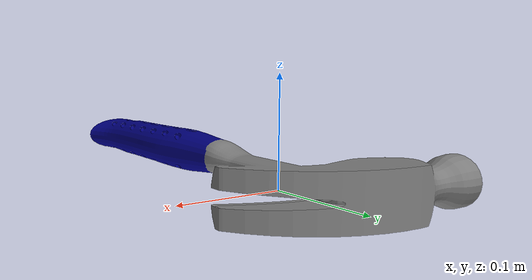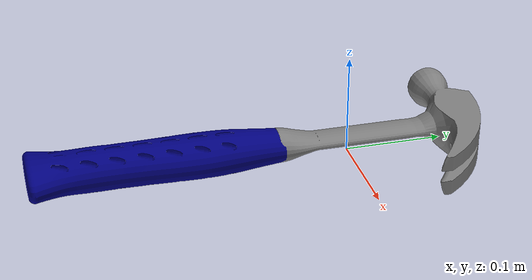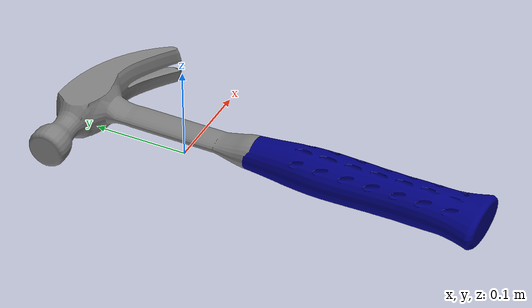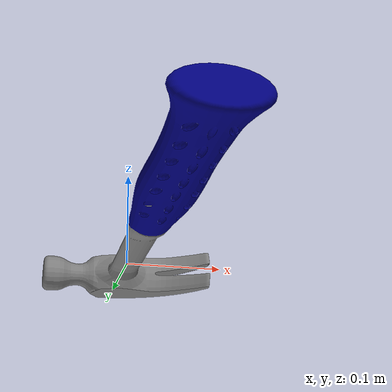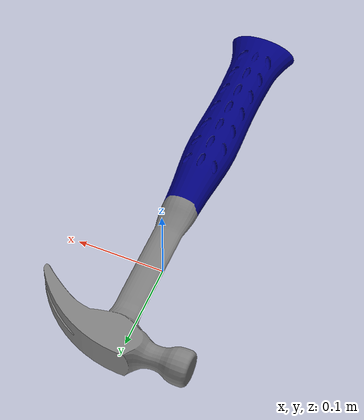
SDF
<?xml version='1.0'?>
<sdf version='1.6'>
  <model name='hammer1'>
    <link name='link'>
      <pose frame=''>-0 0 0.005 0 -0 0</pose>
      <inertial>
        <mass>0.00125</mass>
        <inertia>
          <ixx>7.6e-08</ixx>
          <ixy>0</ixy>
          <ixz>0</ixz>
          <iyy>1.052e-06</iyy>
          <iyz>0</iyz>
          <izz>1.107e-06</izz>
        </inertia>
        <pose frame=''>0 0 0 0 -0 0</pose>
      </inertial>
      <self_collide>0</self_collide>
      <kinematic>0</kinematic>
      <gravity>1</gravity>
      <visual name='visual'>
        <geometry>
          <mesh>
            <uri>/home/zisu/simulator/siemens_challenge/sim_world/toolbox/hammer1.dae</uri>
            <scale>0.0015 0.0015 0.0015</scale>
          </mesh>
        </geometry>
        <pose frame=''>0 0 0 0 -0 0</pose>
        <transparency>0</transparency>
        <cast_shadows>0</cast_shadows>
      </visual>
      <collision name='collision'>
        <laser_retro>0</laser_retro>
        <max_contacts>10</max_contacts>
        <pose frame=''>0.01311555 -0.0929307 0.0151917 0 -0 0</pose>
        <geometry>
          <box>
            <size>0.18886065 0.4579089 0.041499</size>
          </box>
        </geometry>
        <surface>
          <friction>
            <ode>
              <mu>1</mu>
              <mu2>1</mu2>
              <fdir1>0 0 0</fdir1>
              <slip1>0</slip1>
              <slip2>0</slip2>
            </ode>
            <torsional>
              <coefficient>1</coefficient>
              <patch_radius>0</patch_radius>
              <surface_radius>0.05</surface_radius>
              <use_patch_radius>0</use_patch_radius>
              <ode>
                <slip>0</slip>
              </ode>
            </torsional>
          </friction>
          <bounce>
            <restitution_coefficient>0</restitution_coefficient>
            <threshold>1e+06</threshold>
          </bounce>
          <contact>
            <collide_without_contact>0</collide_without_contact>
            <collide_without_contact_bitmask>1</collide_without_contact_bitmask>
            <collide_bitmask>1</collide_bitmask>
            <ode>
              <soft_cfm>0</soft_cfm>
              <soft_erp>0.2</soft_erp>
              <kp>100000</kp>
              <kd>1</kd>
              <max_vel>1</max_vel>
              <min_depth>0.001</min_depth>
            </ode>
            <bullet>
              <split_impulse>1</split_impulse>
              <split_impulse_penetration_threshold>-0.01</split_impulse_penetration_threshold>
              <soft_cfm>0</soft_cfm>
              <soft_erp>0.2</soft_erp>
              <kp>100000</kp>
              <kd>1</kd>
            </bullet>
          </contact>
        </surface>
      </collision>
    </link>
    <static>0</static>
    <allow_auto_disable>1</allow_auto_disable>
  </model>
</sdf>
